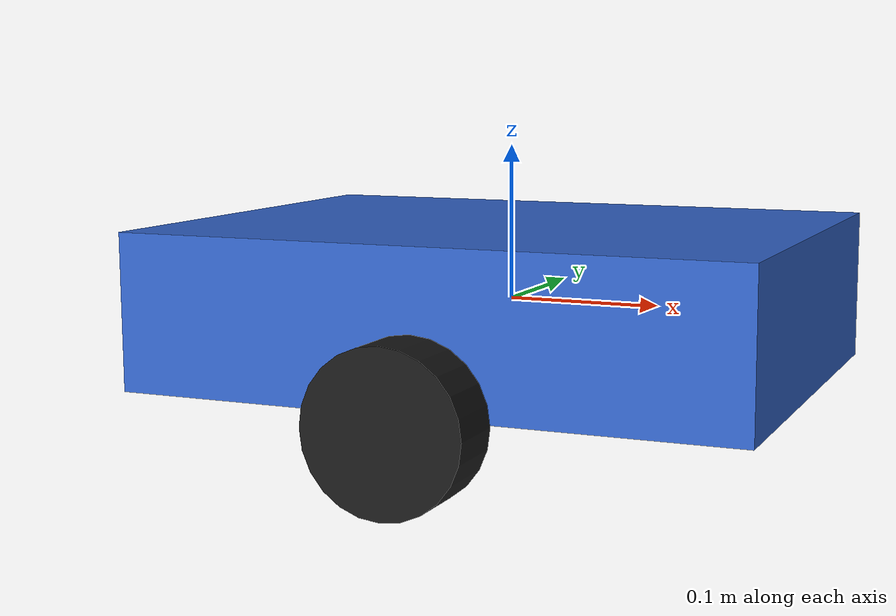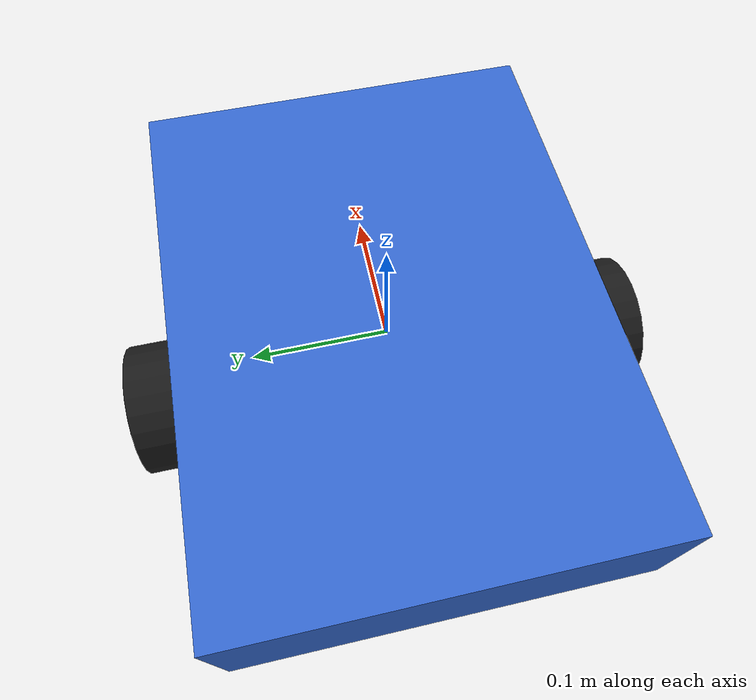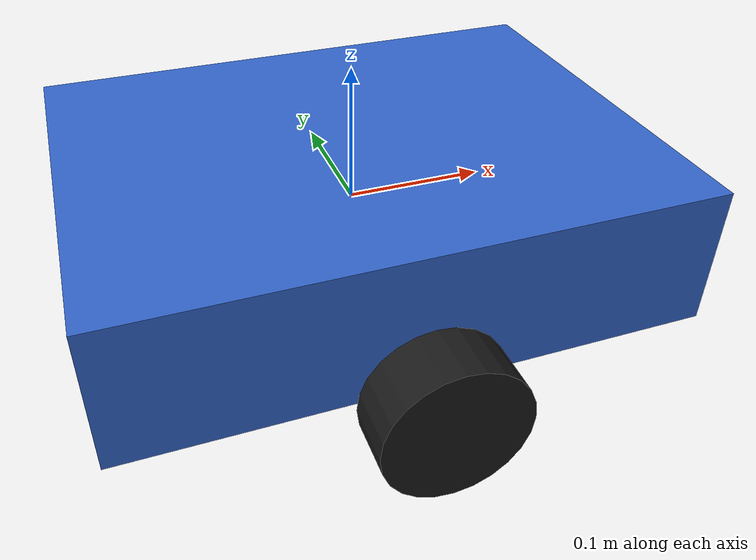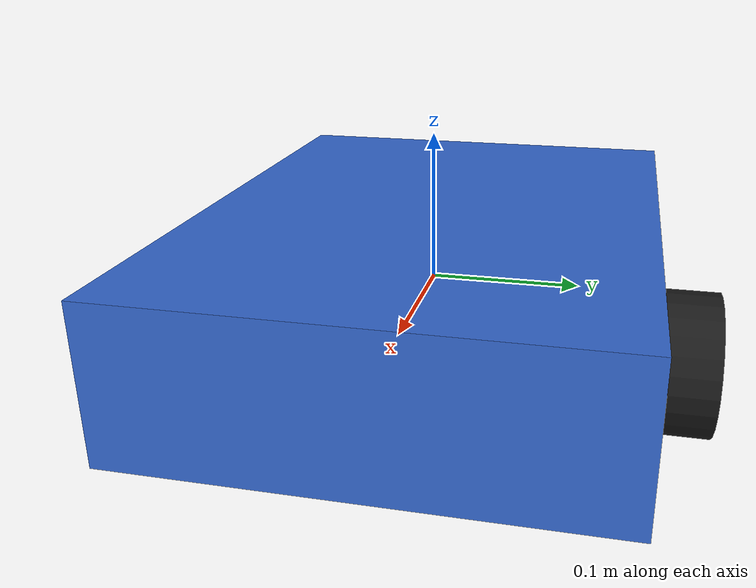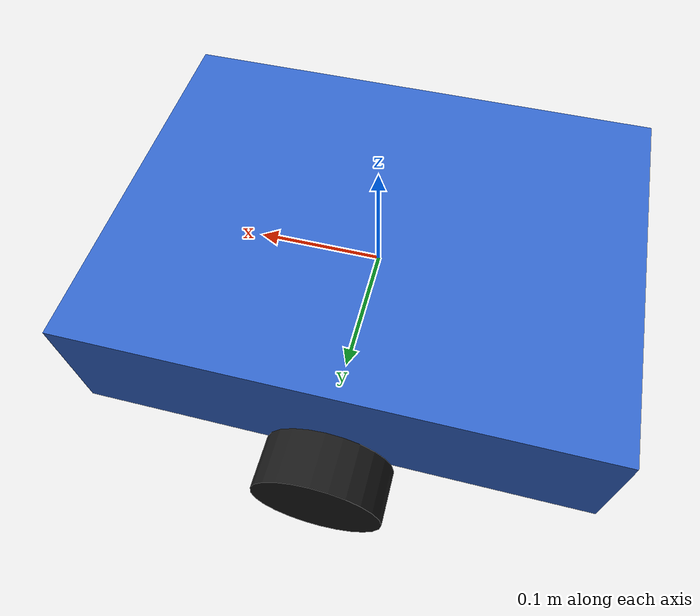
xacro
<?xml version="1.0"?>
<robot name="custom_bot" xmlns:xacro="http://www.ros.org/wiki/xacro">

  <!-- Properties -->
  <xacro:property name="base_width" value="0.3" />
  <xacro:property name="base_length" value="0.4" />
  <xacro:property name="base_height" value="0.1" />
  <xacro:property name="wheel_radius" value="0.05" />
  <xacro:property name="wheel_thickness" value="0.04" />
  <xacro:property name="wheel_separation" value="${base_width + 0.05}" />

  <!-- Xacro argument for namespacing Gazebo plugin topics and frames -->
  <xacro:arg name="robot_namespace" default=""/>

  <!-- Base Link (Chassis) -->
  <link name="base_link">
    <visual>
      <geometry><box size="${base_length} ${base_width} ${base_height}"/></geometry>
      <material name="custom_blue"><color rgba="0.2 0.4 0.8 1"/></material>
    </visual>
    <collision>
      <geometry><box size="${base_length} ${base_width} ${base_height}"/></geometry>
    </collision>
    <inertial>
      <mass value="1.0"/>
      <origin xyz="0 0 0" rpy="0 0 0"/>
      <inertia ixx="0.01" ixy="0.0" ixz="0.0" iyy="0.01" iyz="0.0" izz="0.01"/>
    </inertial>
  </link>
  <gazebo reference="base_link"><material>Gazebo/Blue</material></gazebo>

  <!-- Wheel Macro -->
  <xacro:macro name="wheel_macro" params="prefix y_offset">
    <link name="${prefix}_wheel_link">
      <visual>
        <geometry><cylinder radius="${wheel_radius}" length="${wheel_thickness}"/></geometry>
        <origin xyz="0 0 0" rpy="${pi/2} 0 0"/>
        <material name="custom_black"><color rgba="0.1 0.1 0.1 1"/></material>
      </visual>
      <collision>
        <geometry><cylinder radius="${wheel_radius}" length="${wheel_thickness}"/></geometry>
        <origin xyz="0 0 0" rpy="${pi/2} 0 0"/>
      </collision>
      <inertial>
        <mass value="0.1"/><origin xyz="0 0 0" rpy="0 0 0"/>
        <inertia ixx="0.001" ixy="0.0" ixz="0.0" iyy="0.001" iyz="0.0" izz="0.001"/>
      </inertial>
    </link>
    <gazebo reference="${prefix}_wheel_link"><material>Gazebo/Black</material></gazebo>
    <joint name="${prefix}_wheel_joint" type="continuous">
      <parent link="base_link"/>
      <child link="${prefix}_wheel_link"/>
      <axis xyz="0 1 0"/>
      <origin xyz="0 ${y_offset} -${base_height/2}" rpy="0 0 0"/>
    </joint>
  </xacro:macro>

  <xacro:wheel_macro prefix="left" y_offset="${wheel_separation/2}" />
  <xacro:wheel_macro prefix="right" y_offset="-${wheel_separation/2}" />

  <!-- Gazebo Differential Drive Plugin -->
  <gazebo>
    <plugin name="differential_drive_controller" filename="libgazebo_ros_diff_drive.so">
      <alwaysOn>true</alwaysOn>
      <updateRate>100</updateRate>
      <leftJoint>left_wheel_joint</leftJoint>
      <rightJoint>right_wheel_joint</rightJoint>
      <wheelSeparation>${wheel_separation}</wheelSeparation>
      <wheelDiameter>${2*wheel_radius}</wheelDiameter>
      <torque>20</torque>
      <commandTopic>cmd_vel</commandTopic>
      <odometryTopic>odom</odometryTopic>
      <odometryFrame>$(arg robot_namespace)/odom</odometryFrame>
      <robotBaseFrame>$(arg robot_namespace)/base_link</robotBaseFrame>
      <publishWheelTF>false</publishWheelTF> <!-- Handled by robot_state_publisher -->
      <publishOdomTF>true</publishOdomTF>   <!-- Plugin publishes odom -> base_link TF -->
      <robotNamespace>$(arg robot_namespace)</robotNamespace> <!-- Critical for namespacing -->
    </plugin>
  </gazebo>
</robot>
